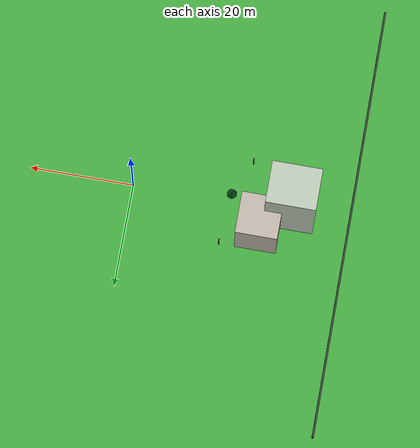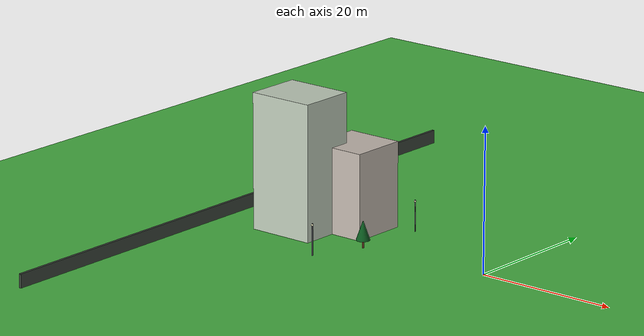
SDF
<sdf version="1.10">
 <world name="city_second">
  <model name="ground_plane">
   <static>true</static>
   <link name="link">
    <collision name="collision">
     <geometry><plane><normal>0 0 1</normal><size>300 300</size></plane></geometry>
    </collision>
    <visual name="visual">
     <geometry><plane><normal>0 0 1</normal><size>300 300</size></plane></geometry>
     <material>
      <ambient>0.280000001 0.689999998 0.25999999 1</ambient>
      <diffuse>0.280000001 0.689999998 0.25999999 1</diffuse>
      <specular>0.0299999993 0.0299999993 0.0299999993 1</specular>
     </material>
    </visual>
    <inertial>
     <mass>1</mass>
     <inertia><ixx>1</ixx><ixy>0</ixy><ixz>0</ixz><iyy>1</iyy><iyz>0</iyz><izz>1</izz></inertia>
    </inertial>
   </link>
  </model>
  <model name="house_2_1">
   <static>true</static>
   <pose>-25.100000000000001 4.4000000000000004 6 0 0 0</pose>
   <link name="link">
    <collision name="collision"><geometry><box><size>8 8 12</size></box></geometry></collision>
    <visual name="visual">
     <geometry><box><size>8 8 12</size></box></geometry>
     <material>
      <ambient>0.769999981 0.730000019 0.689999998 1</ambient>
      <diffuse>0.769999981 0.730000019 0.689999998 1</diffuse>
      <specular>0.0299999993 0.0299999993 0.0299999993 1</specular>
     </material>
    </visual>
    <inertial>
     <mass>1</mass>
     <inertia><ixx>1</ixx><ixy>0</ixy><ixz>0</ixz><iyy>1</iyy><iyz>0</iyz><izz>1</izz></inertia>
    </inertial>
   </link>
  </model>
  <model name="fence_west">
   <static>true</static>
   <pose>-42 0 0.94999999999999996 0 0 0</pose>
   <link name="link">
    <collision name="collision">
     <geometry><box><size>0.34999999999999998 84.5 1.8999999999999999</size></box></geometry>
    </collision>
    <visual name="visual">
     <geometry><box><size>0.34999999999999998 84.5 1.8999999999999999</size></box></geometry>
     <material>
      <ambient>0.230000004 0.270000011 0.230000004 1</ambient>
      <diffuse>0.230000004 0.270000011 0.230000004 1</diffuse>
      <specular>0.0299999993 0.0299999993 0.0299999993 1</specular>
     </material>
    </visual>
    <inertial>
     <mass>1</mass>
     <inertia><ixx>1</ixx><ixy>0</ixy><ixz>0</ixz><iyy>1</iyy><iyz>0</iyz><izz>1</izz></inertia>
    </inertial>
   </link>
  </model>
  <model name="lamp_1_2">
   <static>true</static>
   <pose>-18.1675 8.4933599999999991 2.2000000000000002 0 0 0</pose>
   <link name="link">
    <collision name="collision">
     <geometry>
      <cylinder><radius>0.080000000000000002</radius><length>4.4000000000000004</length></cylinder>
     </geometry>
    </collision>
    <visual name="pole">
     <geometry>
      <cylinder><radius>0.080000000000000002</radius><length>4.4000000000000004</length></cylinder>
     </geometry>
     <material>
      <ambient>0.349999994 0.360000014 0.379999995 1</ambient>
      <diffuse>0.349999994 0.360000014 0.379999995 1</diffuse>
      <specular>0.0299999993 0.0299999993 0.0299999993 1</specular>
     </material>
    </visual>
    <visual name="lamp_head">
     <pose>0 0 2 0 0 0</pose>
     <geometry><sphere><radius>0.14000000000000001</radius></sphere></geometry>
     <material>
      <ambient>0.959999979 0.939999998 0.779999971 1</ambient>
      <diffuse>0.959999979 0.939999998 0.779999971 1</diffuse>
      <specular>0.0299999993 0.0299999993 0.0299999993 1</specular>
     </material>
    </visual>
    <inertial>
     <mass>1</mass>
     <inertia><ixx>1</ixx><ixy>0</ixy><ixz>0</ixz><iyy>1</iyy><iyz>0</iyz><izz>1</izz></inertia>
    </inertial>
   </link>
  </model>
  <model name="house_3_3_1">
   <static>true</static>
   <pose>-30.574100000000001 -0.618421 9.5 0 0 0</pose>
   <link name="link">
    <collision name="collision"><geometry><box><size>9.5 8 19</size></box></geometry></collision>
    <visual name="visual">
     <geometry><box><size>9.5 8 19</size></box></geometry>
     <material>
      <ambient>0.75999999 0.810000002 0.74000001 1</ambient>
      <diffuse>0.75999999 0.810000002 0.74000001 1</diffuse>
      <specular>0.0299999993 0.0299999993 0.0299999993 1</specular>
     </material>
    </visual>
    <inertial>
     <mass>1</mass>
     <inertia><ixx>1</ixx><ixy>0</ixy><ixz>0</ixz><iyy>1</iyy><iyz>0</iyz><izz>1</izz></inertia>
    </inertial>
   </link>
  </model>
  <model name="lamp_1_2_1">
   <static>true</static>
   <pose>-21.998200000000001 -8.1758500000000005 2.2000000000000002 0 0 0</pose>
   <link name="link">
    <collision name="collision">
     <geometry>
      <cylinder><radius>0.080000000000000002</radius><length>4.4000000000000004</length></cylinder>
     </geometry>
    </collision>
    <visual name="pole">
     <geometry>
      <cylinder><radius>0.080000000000000002</radius><length>4.4000000000000004</length></cylinder>
     </geometry>
     <material>
      <ambient>0.349999994 0.360000014 0.379999995 1</ambient>
      <diffuse>0.349999994 0.360000014 0.379999995 1</diffuse>
      <specular>0.0299999993 0.0299999993 0.0299999993 1</specular>
     </material>
    </visual>
    <visual name="lamp_head">
     <pose>0 0 2 0 0 0</pose>
     <geometry><sphere><radius>0.14000000000000001</radius></sphere></geometry>
     <material>
      <ambient>0.959999979 0.939999998 0.779999971 1</ambient>
      <diffuse>0.959999979 0.939999998 0.779999971 1</diffuse>
      <specular>0.0299999993 0.0299999993 0.0299999993 1</specular>
     </material>
    </visual>
    <inertial>
     <mass>1</mass>
     <inertia><ixx>1</ixx><ixy>0</ixy><ixz>0</ixz><iyy>1</iyy><iyz>0</iyz><izz>1</izz></inertia>
    </inertial>
   </link>
  </model>
  <model name="Pine Tree_11">
   <static>true</static>
   <pose>-18.971399999999999 -1.4216200000000001 0 0 0 0</pose>
   <link name="link">
    <collision name="footprint">
     <pose>0 0 0.050000000000000003 0 0 0</pose>
     <geometry>
      <cylinder><radius>0.65000000000000002</radius><length>0.10000000000000001</length></cylinder>
     </geometry>
    </collision>
    <visual name="trunk">
     <pose>0 0 0.90000000000000002 0 0 0</pose>
     <geometry><cylinder><radius>0.13</radius><length>1.8</length></cylinder></geometry>
     <material>
      <ambient>0.360000014 0.200000003 0.100000001 1</ambient>
      <diffuse>0.360000014 0.200000003 0.100000001 1</diffuse>
      <specular>0.119999997 0.119999997 0.119999997 1</specular>
      <emissive>0 0 0 1</emissive>
     </material>
    </visual>
    <visual name="crown">
     <pose>0 0 2.4500000000000002 0 0 0</pose>
     <geometry><cone><radius>0.94999999999999996</radius><length>2.7000000000000002</length></cone></geometry>
     <material>
      <ambient>0.0299999993 0.340000004 0.109999999 1</ambient>
      <diffuse>0.0299999993 0.340000004 0.109999999 1</diffuse>
      <specular>0.119999997 0.119999997 0.119999997 1</specular>
      <emissive>0 0 0 1</emissive>
     </material>
    </visual>
    <inertial>
     <mass>1</mass>
     <inertia><ixx>1</ixx><ixy>0</ixy><ixz>0</ixz><iyy>1</iyy><iyz>0</iyz><izz>1</izz></inertia>
    </inertial>
   </link>
  </model>
 </world>
</sdf>
